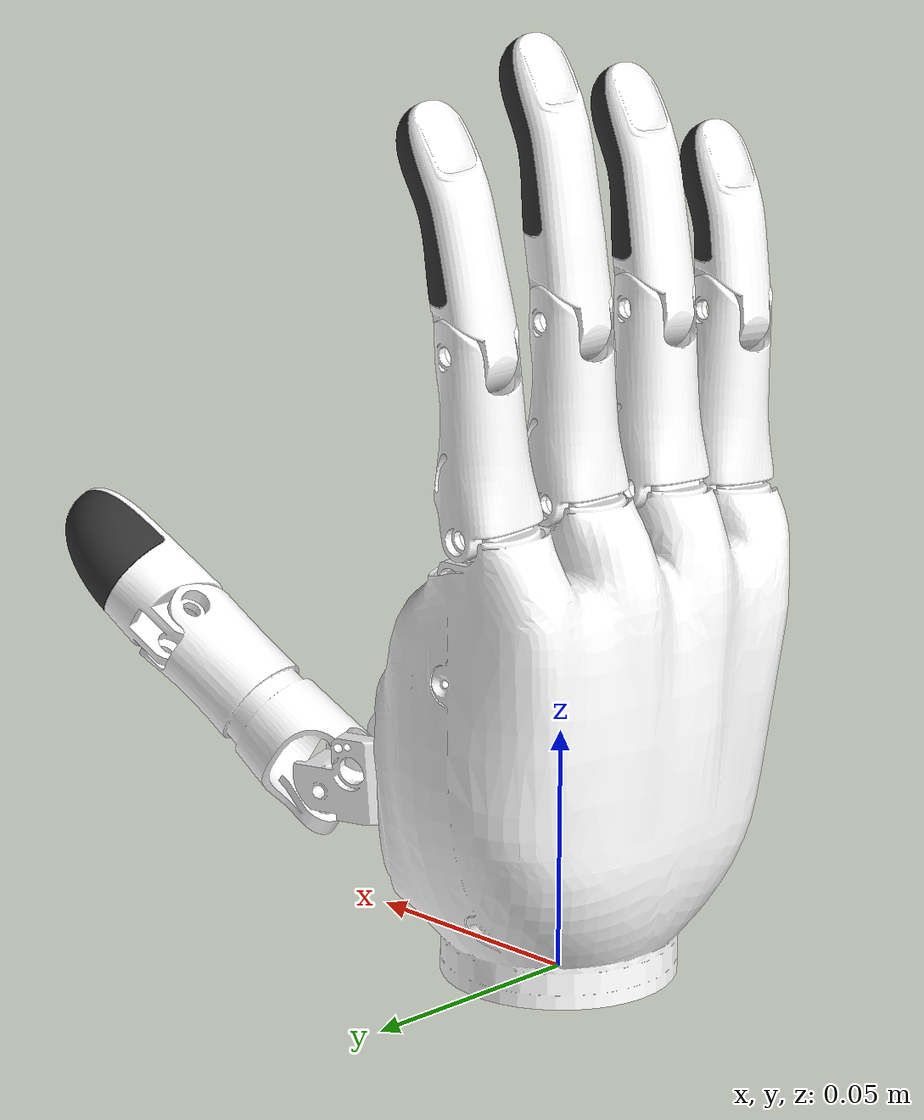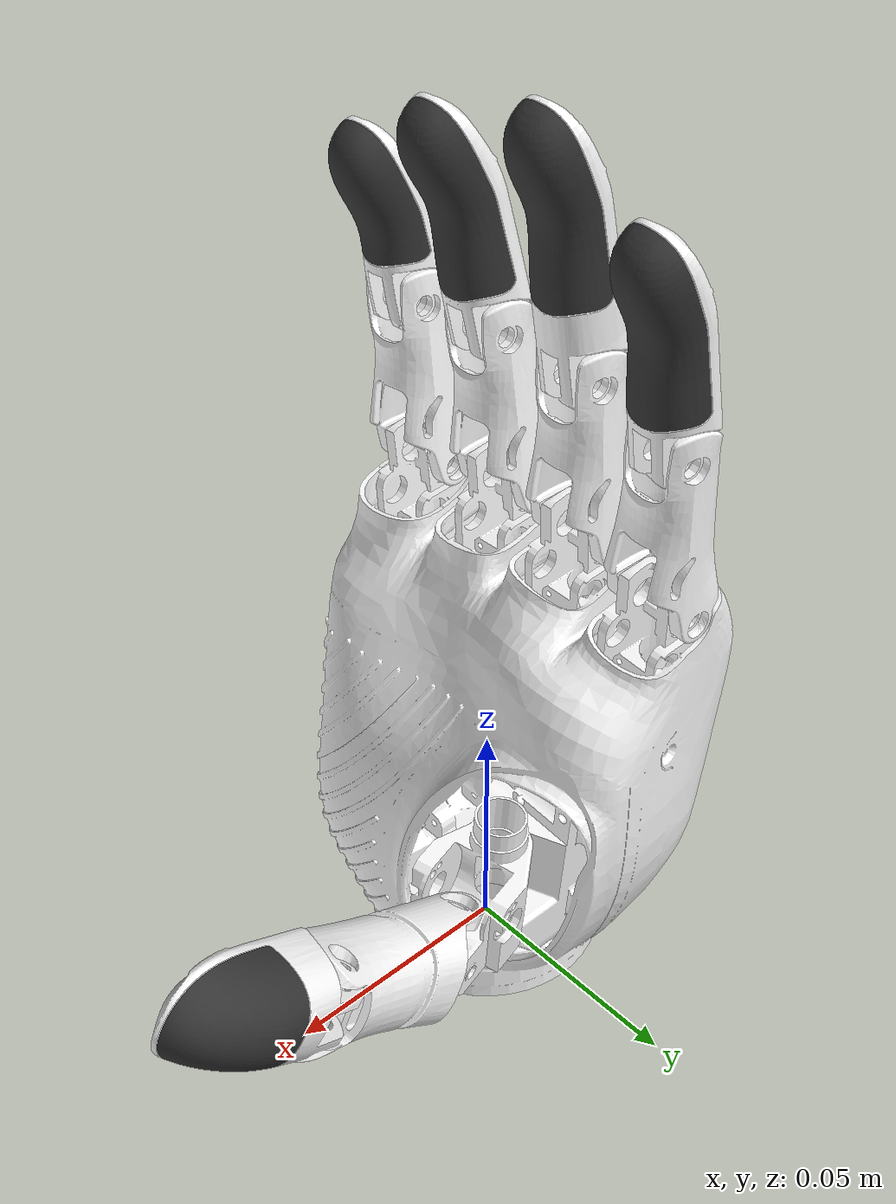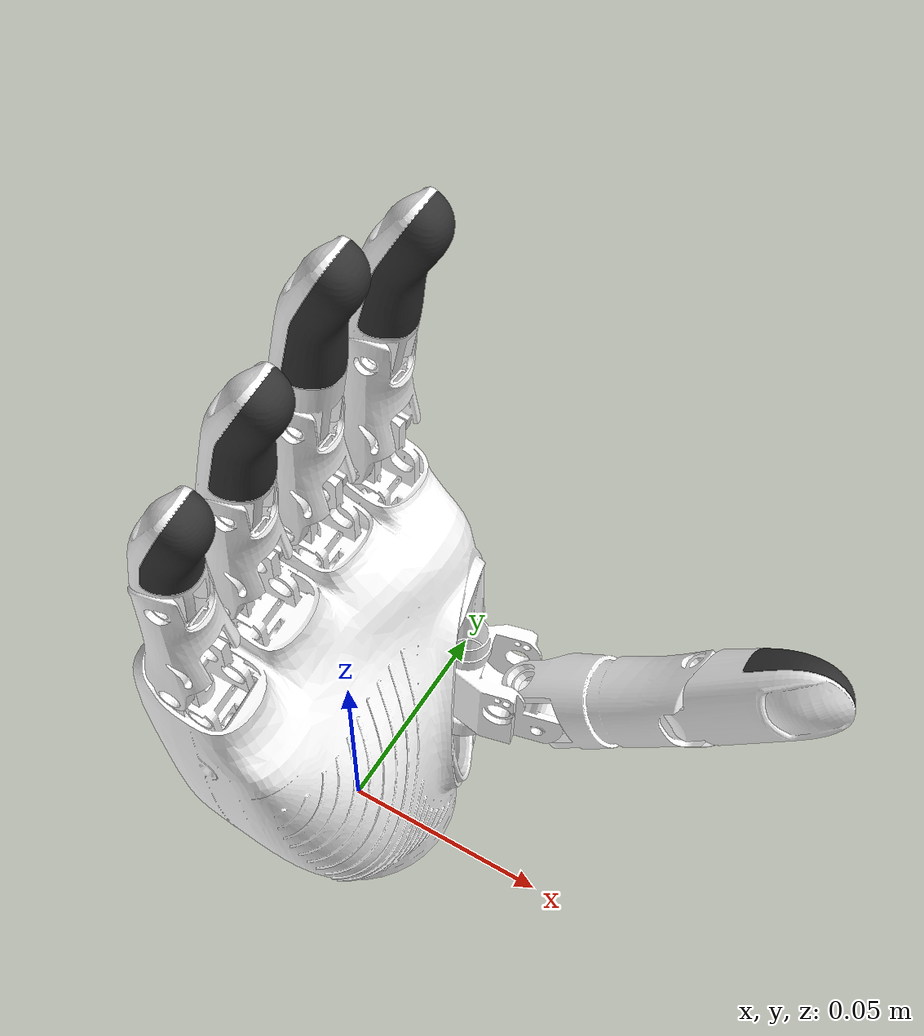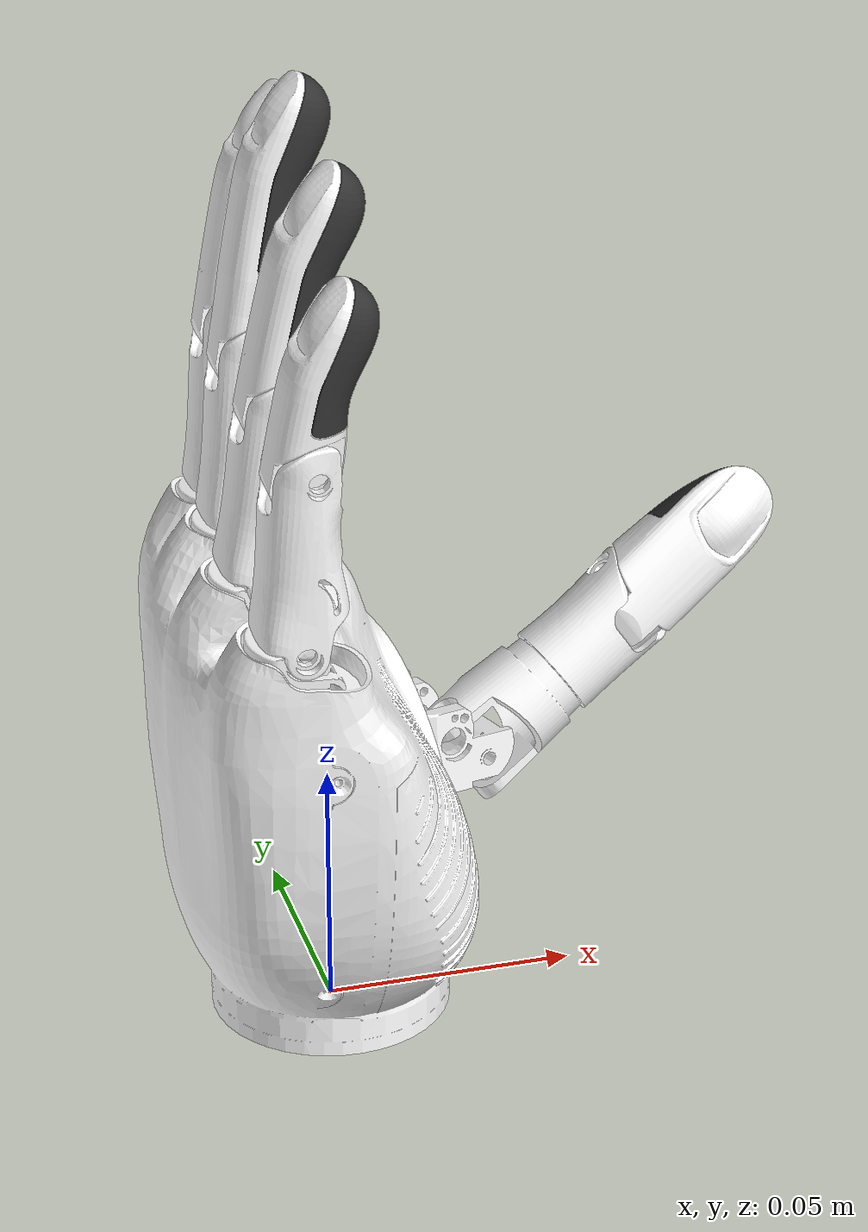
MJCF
<?xml version="1.0" encoding="utf-8"?>
<!--
  MuJoCo MJCF model for DH116-R000-A1 Dexterous Hand (Right)
  ============================================================
  Converted from the DH116 URDF package and README formulas.
-->

<mujoco model="DH116-R000-A1">

  <compiler angle="radian" meshdir="../meshes" eulerseq="XYZ" autolimits="true"/>
  <option gravity="0 0 -9.81" timestep="0.002" iterations="100"/>

  <default>
    <joint type="hinge" damping="2.0" armature="0.01" frictionloss="0"/>
    <geom condim="4" friction="1.0 0.005 0.001" contype="0" conaffinity="0"/>
    <equality solref="0.004 1" solimp="0.9 0.99 0.001 0.5 2"/>
  </default>

  <asset>
    <mesh name="base_link" file="base_link.STL"/>
    <mesh name="finger11_link" file="finger11_link.STL"/>
    <mesh name="finger12_link" file="finger12_link.STL"/>
    <mesh name="finger13_link" file="finger13_link.STL"/>
    <mesh name="finger14_link" file="finger14_link.STL"/>
    <mesh name="finger21_link" file="finger21_link.STL"/>
    <mesh name="finger22_link" file="finger22_link.STL"/>
    <mesh name="finger23_link" file="finger23_link.STL"/>
    <mesh name="finger31_link" file="finger31_link.STL"/>
    <mesh name="finger32_link" file="finger32_link.STL"/>
    <mesh name="finger33_link" file="finger33_link.STL"/>
    <mesh name="finger41_link" file="finger41_link.STL"/>
    <mesh name="finger42_link" file="finger42_link.STL"/>
    <mesh name="finger43_link" file="finger43_link.STL"/>
    <mesh name="finger51_link" file="finger51_link.STL"/>
    <mesh name="finger52_link" file="finger52_link.STL"/>
    <mesh name="finger53_link" file="finger53_link.STL"/>
  </asset>

  <worldbody>

    <body name="base_link" pos="0 0 0">
      <geom name="base_link" type="mesh" mesh="base_link" rgba="1 1 1 1"/>
      <inertial pos="-0.0052741 0.002479 0.057207"
                mass="0.10866"
                fullinertia="8.6558E-05 5.5287E-05 4.1066E-05 1.592E-07 2.7057E-06 -4.058E-07"/>

      <!-- ===== 手指 1：大拇指 (Thumb) ===== -->
      <body name="finger11_link"
            pos="0.018 0.021747 0.043279"
            euler="-0.087266 0 0">
        <joint name="finger11" axis="0 0 -1" range="0 1.047198"/>
        <geom name="finger11_link" type="mesh" mesh="finger11_link" rgba="1 1 1 1"/>
        <inertial pos="0.0078225 0.0020462 -0.0025622"
                  mass="0.010254"
                  fullinertia="7.2142E-07 1.1141E-06 1.144E-06 -1.1025E-07 1.8578E-07 4.8596E-08"/>
        <body name="finger12_link"
              pos="0.018876 0.0049375 -0.0056093"
              euler="0 0.95149 0.25585">
          <joint name="finger12" axis="0 -1 0" range="0 0.523599"/>
          <geom name="finger12_link" type="mesh" mesh="finger12_link" rgba="1 1 1 1"/>
          <inertial pos="0.0014182 -1.2893E-06 0.024329"
                    mass="0.010145"
                    fullinertia="2.4795E-06 2.2943E-06 8.8906E-07 2.3633E-11 -9.1895E-08 4.4162E-11"/>
          <body name="finger13_link"
                pos="0 0 0.045"
                euler="0 0 0">
            <joint name="finger13" axis="0 -1 0" range="0.004592 0.594583"/>
            <geom name="finger13_link" type="mesh" mesh="finger13_link" rgba="1 1 1 1" contype="1" conaffinity="1"/>
            <inertial pos="0.0064864 -1.72E-06 0.014709"
                      mass="0.020548"
                      fullinertia="2.4642E-06 2.3555E-06 8.7678E-07 2.2654E-10 -1.276E-07 3.4328E-10"/>
            <body name="finger14_link"
                  pos="0 0 0"
                  euler="0 0 0">
              <geom name="finger14_link" type="mesh" mesh="finger14_link" rgba="0.2 0.2 0.2 1" contype="1" conaffinity="1"/>
              <inertial pos="0.0030983 8.624E-07 0.024752"
                        mass="0.00064654"
                        fullinertia="4.6206E-08 3.0972E-08 3.328E-08 -1.7511E-11 -7.0078E-09 3.3703E-12"/>
            </body>
          </body>
        </body>
      </body>

      <!-- ===== 手指 2：食指 (Index) ===== -->
      <body name="finger21_link"
            pos="-0.011581 0.031971 0.10003"
            euler="-0.052657 0.10625 -0.0055894">
        <joint name="finger21" axis="0 1 0" range="0 1.396263"/>
        <geom name="finger21_link" type="mesh" mesh="finger21_link" rgba="1 1 1 1"/>
        <inertial pos="-0.0017978 3.2789E-07 0.018686"
                  mass="0.0067143"
                  fullinertia="1.1951E-06 1.0688E-06 3.7304E-07 6.7451E-12 -4.4967E-09 -2.4168E-12"/>
        <body name="finger22_link"
              pos="0 0 0.035"
              euler="0 0 0">
          <joint name="finger22" axis="0 1 0" range="0.011072 1.687426"/>
          <geom name="finger22_link" type="mesh" mesh="finger22_link" rgba="1 1 1 1" contype="1" conaffinity="1"/>
          <inertial pos="-0.0019337 7.2998E-07 0.02175"
                    mass="0.014789"
                    fullinertia="1.4665E-06 1.4889E-06 3.5281E-07 1.1416E-11 -1.6584E-07 -9.2753E-11"/>
          <body name="finger23_link"
                pos="0 0 0"
                euler="0 0 0">
            <geom name="finger23_link" type="mesh" mesh="finger23_link" rgba="0.2 0.2 0.2 1" contype="1" conaffinity="1"/>
            <inertial pos="0.0027534 -5.1038E-07 0.027456"
                      mass="0.00083419"
                      fullinertia="1.0852E-07 9.6252E-08 2.404E-08 -2.4081E-13 -9.2843E-09 -2.9524E-12"/>
          </body>
        </body>
      </body>

      <!-- ===== 手指 3：中指 (Middle) ===== -->
      <body name="finger31_link"
            pos="-0.013501 0.0105 0.10286"
            euler="0 0.10214 0">
        <joint name="finger31" axis="0 1 0" range="0 1.396263"/>
        <geom name="finger31_link" type="mesh" mesh="finger31_link" rgba="1 1 1 1"/>
        <inertial pos="-0.0017978 3.3269E-07 0.018686"
                  mass="0.0067141"
                  fullinertia="1.1951E-06 1.0688E-06 3.7303E-07 1.1431E-11 -4.4917E-09 8.2241E-12"/>
        <body name="finger32_link"
              pos="0 0 0.035"
              euler="0 0 0">
          <joint name="finger32" axis="0 1 0" range="0.011072 1.687426"/>
          <geom name="finger32_link" type="mesh" mesh="finger32_link" rgba="1 1 1 1" contype="1" conaffinity="1"/>
          <inertial pos="-0.0021242 6.6141E-08 0.024943"
                    mass="0.017444"
                    fullinertia="4.1711E-06 4.1927E-06 4.4322E-07 1.8194E-11 -2.6488E-07 -1.6389E-11"/>
          <body name="finger33_link"
                pos="0 0 0"
                euler="0 0 0">
            <geom name="finger33_link" type="mesh" mesh="finger33_link" rgba="0.2 0.2 0.2 1" contype="1" conaffinity="1"/>
            <inertial pos="0.0025776 -4.8031E-07 0.03447"
                      mass="0.00083416"
                      fullinertia="1.0861E-07 9.6246E-08 2.3939E-08 1.3942E-12 -8.8309E-09 -5.9916E-13"/>
          </body>
        </body>
      </body>

      <!-- ===== 手指 4：无名指 (Ring) ===== -->
      <body name="finger41_link"
            pos="-0.015081 -0.010971 0.10183"
            euler="0.052889 0.14148 0.0074648">
        <joint name="finger41" axis="0 1 0" range="0 1.396263"/>
        <geom name="finger41_link" type="mesh" mesh="finger41_link" rgba="1 1 1 1"/>
        <inertial pos="-0.0017978 2.8835E-07 0.018686"
                  mass="0.006714"
                  fullinertia="1.1951E-06 1.0688E-06 3.7303E-07 1.5194E-11 -4.4902E-09 1.057E-11"/>
        <body name="finger42_link"
              pos="0 0 0.035"
              euler="0 0 0">
          <joint name="finger42" axis="0 1 0" range="0.011072 1.687426"/>
          <geom name="finger42_link" type="mesh" mesh="finger42_link" rgba="1 1 1 1" contype="1" conaffinity="1"/>
          <inertial pos="-0.00099481 6.0006E-07 0.021813"
                    mass="0.014788"
                    fullinertia="1.4501E-06 1.4888E-06 3.6915E-07 2.324E-11 -2.1315E-07 -8.582E-11"/>
          <body name="finger43_link"
                pos="0 0 0"
                euler="0 0 0">
            <geom name="finger43_link" type="mesh" mesh="finger43_link" rgba="0.2 0.2 0.2 1" contype="1" conaffinity="1"/>
            <inertial pos="0.0039336 -3.2576E-07 0.027311"
                      mass="0.0008342"
                      fullinertia="1.0756E-07 9.6251E-08 2.4997E-08 5.2726E-13 -1.2886E-08 -6.5627E-13"/>
          </body>
        </body>
      </body>

      <!-- ===== 手指 5：小拇指 (Pinky) ===== -->
      <body name="finger51_link"
            pos="-0.013081 -0.032156 0.097798"
            euler="0.078754 0.073706 0.0058113">
        <joint name="finger51" axis="0 1 0" range="0 1.396263"/>
        <geom name="finger51_link" type="mesh" mesh="finger51_link" rgba="1 1 1 1"/>
        <inertial pos="-0.0017978 4.0336E-07 0.018686"
                  mass="0.0067142"
                  fullinertia="1.1951E-06 1.0688E-06 3.7303E-07 9.6674E-12 -4.4947E-09 3.902E-12"/>
        <body name="finger52_link"
              pos="0 0 0.035"
              euler="0 0 0">
          <joint name="finger52" axis="0 1 0" range="0.011072 1.687426"/>
          <geom name="finger52_link" type="mesh" mesh="finger52_link" rgba="1 1 1 1" contype="1" conaffinity="1"/>
          <inertial pos="-0.0024432 3.1795E-07 0.016659"
                    mass="0.010445"
                    fullinertia="1.336E-06 1.3478E-06 2.4659E-07 2.6011E-11 -1.1818E-07 -5.5233E-12"/>
          <body name="finger53_link"
                pos="0 0 0"
                euler="0 0 0">
            <geom name="finger53_link" type="mesh" mesh="finger53_link" rgba="0.2 0.2 0.2 1" contype="1" conaffinity="1"/>
            <inertial pos="0.0021833 1.5926E-06 0.02278"
                      mass="0.00059177"
                      fullinertia="4.5328E-08 3.6598E-08 1.5894E-08 2.1034E-12 -3.5665E-09 -2.539E-12"/>
          </body>
        </body>
      </body>
    </body>

  </worldbody>

  <equality>
    <joint name="eq_thumb" joint1="finger13" joint2="finger12"
           polycoef="0.004592 0.8808 0.469825 0 0"/>
    <joint name="eq_index" joint1="finger22" joint2="finger21"
           polycoef="0.011072 0.9206 0.200535 0 0"/>
    <joint name="eq_middle" joint1="finger32" joint2="finger31"
           polycoef="0.011072 0.9206 0.200535 0 0"/>
    <joint name="eq_ring" joint1="finger42" joint2="finger41"
           polycoef="0.011072 0.9206 0.200535 0 0"/>
    <joint name="eq_pinky" joint1="finger52" joint2="finger51"
           polycoef="0.011072 0.9206 0.200535 0 0"/>
  </equality>

  <actuator>
    <position name="act_finger11" joint="finger11" kp="50" kv="2.0" ctrlrange="0 1.047198"/>
    <position name="act_finger12" joint="finger12" kp="50" kv="2.0" ctrlrange="0 0.523599"/>
    <position name="act_finger21" joint="finger21" kp="50" kv="2.0" ctrlrange="0 1.396263"/>
    <position name="act_finger31" joint="finger31" kp="50" kv="2.0" ctrlrange="0 1.396263"/>
    <position name="act_finger41" joint="finger41" kp="50" kv="2.0" ctrlrange="0 1.396263"/>
    <position name="act_finger51" joint="finger51" kp="50" kv="2.0" ctrlrange="0 1.396263"/>
  </actuator>

</mujoco>
